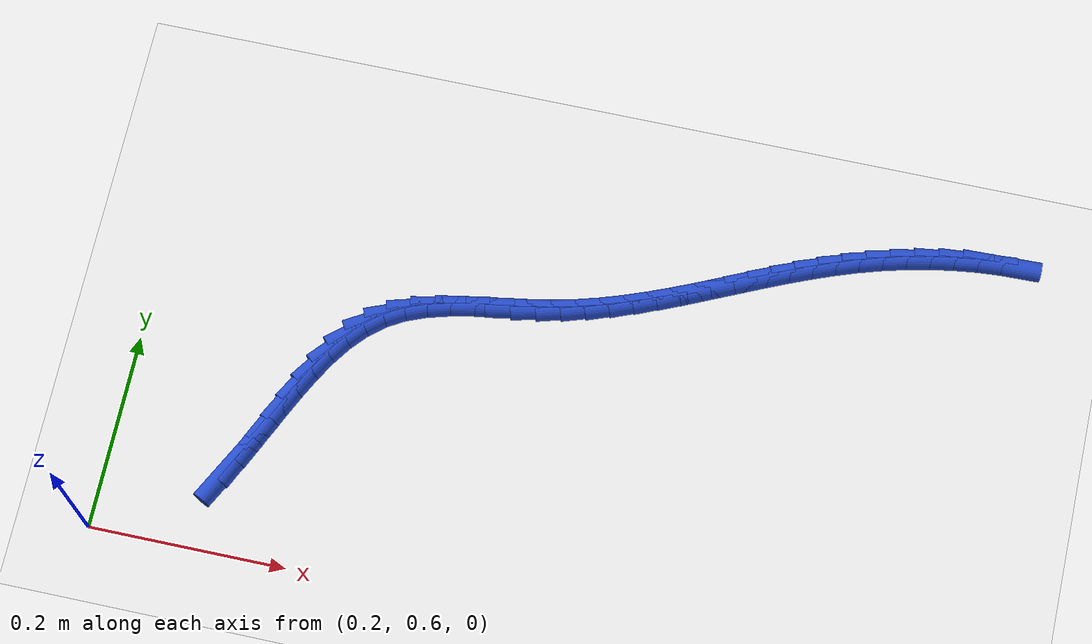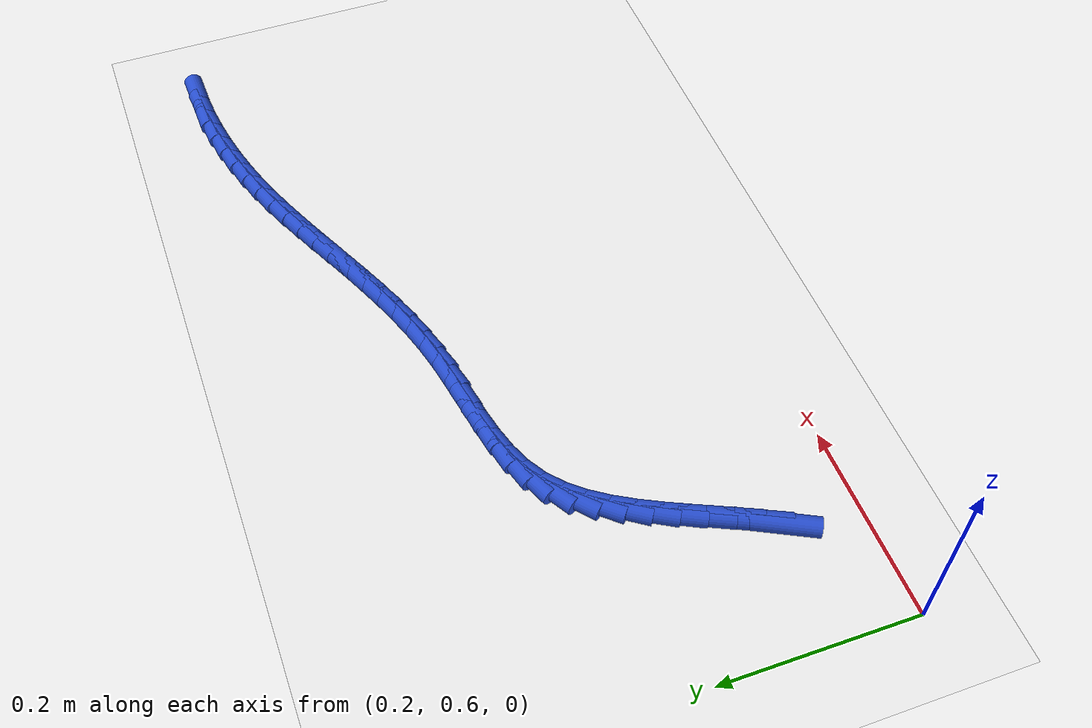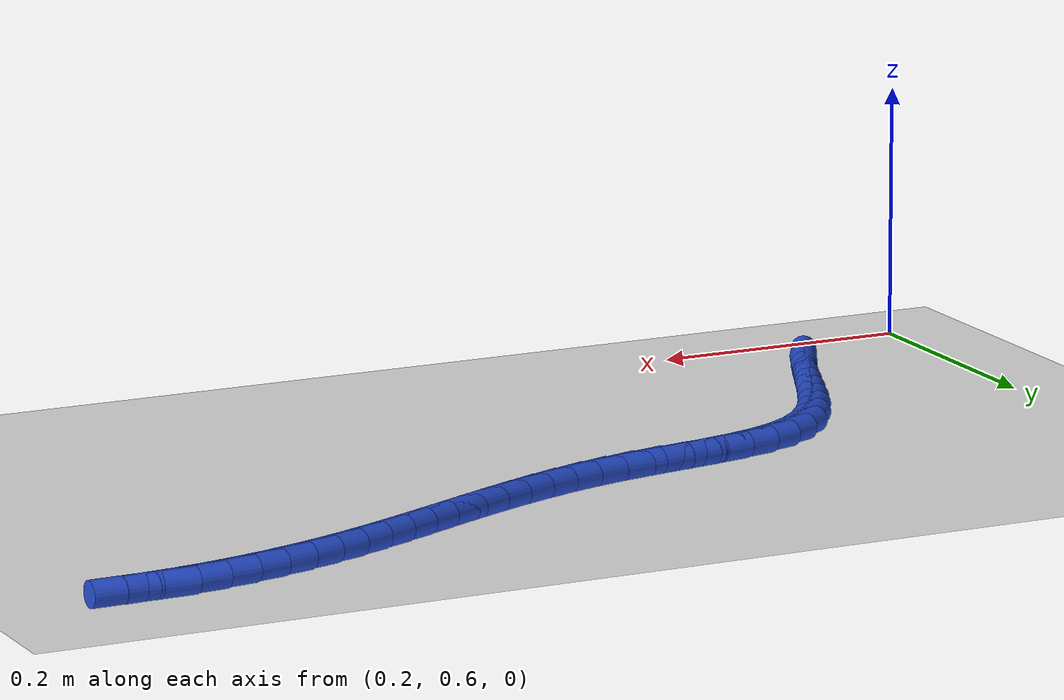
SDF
<sdf version="1.6">
 <world name="default">
  <model name="ground_plane">
   <static>1</static>
   <link name="link">
    <collision name="collision">
     <geometry><plane><normal>0 0 1</normal><size>100 100</size></plane></geometry>
     <surface><friction><ode><mu>100</mu><mu2>50</mu2></ode></friction></surface>
    </collision>
    <visual name="visual">
     <cast_shadows>0</cast_shadows>
     <geometry><plane><normal>0 0 1</normal><size>100 100</size></plane></geometry>
     <material>
      <script><uri>file://media/materials/scripts/gazebo.material</uri><name>Gazebo/WhiteGlow</name></script>
     </material>
    </visual>
   </link>
  </model>
  <model name="line">
   <link name="link_32">
    <pose>0.3214619400428342 0.6829497191318804 0.01 0 1.57 1.0975435108582867</pose>
    <collision name="collision">
     <geometry><cylinder><radius>0.01</radius><length>0.08</length></cylinder></geometry>
    </collision>
    <visual name="visual">
     <material>
      <script><name>Gazebo/Blue</name><uri>file://media/materials/scripts/gazebo.material</uri></script>
     </material>
     <geometry><cylinder><radius>0.01</radius><length>0.08</length></cylinder></geometry>
    </visual>
   </link>
   <link name="link_33">
    <pose>0.33305902299179746 0.7055974044341369 0.01 0 1.57 1.130329600358164</pose>
    <collision name="collision">
     <geometry><cylinder><radius>0.01</radius><length>0.08</length></cylinder></geometry>
    </collision>
    <visual name="visual">
     <material>
      <script><name>Gazebo/Blue</name><uri>file://media/materials/scripts/gazebo.material</uri></script>
     </material>
     <geometry><cylinder><radius>0.01</radius><length>0.08</length></cylinder></geometry>
    </visual>
   </link>
   <link name="link_34">
    <pose>0.34402848020659565 0.7288697882104459 0.01 0 1.57 1.1418536177287364</pose>
    <collision name="collision">
     <geometry><cylinder><radius>0.01</radius><length>0.08</length></cylinder></geometry>
    </collision>
    <visual name="visual">
     <material>
      <script><name>Gazebo/Blue</name><uri>file://media/materials/scripts/gazebo.material</uri></script>
     </material>
     <geometry><cylinder><radius>0.01</radius><length>0.08</length></cylinder></geometry>
    </visual>
   </link>
   <link name="link_35">
    <pose>0.35474117768465696 0.752293611536665 0.01 0 1.57 1.132539995785431</pose>
    <collision name="collision">
     <geometry><cylinder><radius>0.01</radius><length>0.08</length></cylinder></geometry>
    </collision>
    <visual name="visual">
     <material>
      <script><name>Gazebo/Blue</name><uri>file://media/materials/scripts/gazebo.material</uri></script>
     </material>
     <geometry><cylinder><radius>0.01</radius><length>0.08</length></cylinder></geometry>
    </visual>
   </link>
   <link name="link_36">
    <pose>0.3655679814234096 0.775395615488651 0.01 0 1.57 1.1014872174678245</pose>
    <collision name="collision">
     <geometry><cylinder><radius>0.01</radius><length>0.08</length></cylinder></geometry>
    </collision>
    <visual name="visual">
     <material>
      <script><name>Gazebo/Blue</name><uri>file://media/materials/scripts/gazebo.material</uri></script>
     </material>
     <geometry><cylinder><radius>0.01</radius><length>0.08</length></cylinder></geometry>
    </visual>
   </link>
   <link name="link_37">
    <pose>0.37687975742028146 0.797702541142261 0.01 0 1.57 1.0464499784861645</pose>
    <collision name="collision">
     <geometry><cylinder><radius>0.01</radius><length>0.08</length></cylinder></geometry>
    </collision>
    <visual name="visual">
     <material>
      <script><name>Gazebo/Blue</name><uri>file://media/materials/scripts/gazebo.material</uri></script>
     </material>
     <geometry><cylinder><radius>0.01</radius><length>0.08</length></cylinder></geometry>
    </visual>
   </link>
   <link name="link_38">
    <pose>0.3890473716727008 0.8187411295733524 0.01 0 1.57 0.9640314212186265</pose>
    <collision name="collision">
     <geometry><cylinder><radius>0.01</radius><length>0.08</length></cylinder></geometry>
    </collision>
    <visual name="visual">
     <material>
      <script><name>Gazebo/Blue</name><uri>file://media/materials/scripts/gazebo.material</uri></script>
     </material>
     <geometry><cylinder><radius>0.01</radius><length>0.08</length></cylinder></geometry>
    </visual>
   </link>
   <link name="link_39">
    <pose>0.4024416901780958 0.8380381218577823 0.01 0 1.57 0.8504756450179841</pose>
    <collision name="collision">
     <geometry><cylinder><radius>0.01</radius><length>0.08</length></cylinder></geometry>
    </collision>
    <visual name="visual">
     <material>
      <script><name>Gazebo/Blue</name><uri>file://media/materials/scripts/gazebo.material</uri></script>
     </material>
     <geometry><cylinder><radius>0.01</radius><length>0.08</length></cylinder></geometry>
    </visual>
   </link>
   <link name="link_40">
    <pose>0.4174335789338943 0.8551202590714075 0.01 0 1.57 0.7037318500427051</pose>
    <collision name="collision">
     <geometry><cylinder><radius>0.01</radius><length>0.08</length></cylinder></geometry>
    </collision>
    <visual name="visual">
     <material>
      <script><name>Gazebo/Blue</name><uri>file://media/materials/scripts/gazebo.material</uri></script>
     </material>
     <geometry><cylinder><radius>0.01</radius><length>0.08</length></cylinder></geometry>
    </visual>
   </link>
   <link name="link_41">
    <pose>0.4343939039375247 0.8695142822900852 0.01 0 1.57 0.5318612919687798</pose>
    <collision name="collision">
     <geometry><cylinder><radius>0.01</radius><length>0.08</length></cylinder></geometry>
    </collision>
    <visual name="visual">
     <material>
      <script><name>Gazebo/Blue</name><uri>file://media/materials/scripts/gazebo.material</uri></script>
     </material>
     <geometry><cylinder><radius>0.01</radius><length>0.08</length></cylinder></geometry>
    </visual>
   </link>
   <link name="link_42">
    <pose>0.4536304416415753 0.8808334461201939 0.01 0 1.57 0.38193620138623197</pose>
    <collision name="collision">
     <geometry><cylinder><radius>0.01</radius><length>0.08</length></cylinder></geometry>
    </collision>
    <visual name="visual">
     <material>
      <script><name>Gazebo/Blue</name><uri>file://media/materials/scripts/gazebo.material</uri></script>
     </material>
     <geometry><cylinder><radius>0.01</radius><length>0.08</length></cylinder></geometry>
    </visual>
   </link>
   <link name="link_43">
    <pose>0.47493946596729103 0.8893924191657804 0.01 0 1.57 0.2743661039947238</pose>
    <collision name="collision">
     <geometry><cylinder><radius>0.01</radius><length>0.08</length></cylinder></geometry>
    </collision>
    <visual name="visual">
     <material>
      <script><name>Gazebo/Blue</name><uri>file://media/materials/scripts/gazebo.material</uri></script>
     </material>
     <geometry><cylinder><radius>0.01</radius><length>0.08</length></cylinder></geometry>
    </visual>
   </link>
   <link name="link_44">
    <pose>0.4978690154981541 0.8958462705762523 0.01 0 1.57 0.2048364941718794</pose>
    <collision name="collision">
     <geometry><cylinder><radius>0.01</radius><length>0.08</length></cylinder></geometry>
    </collision>
    <visual name="visual">
     <material>
      <script><name>Gazebo/Blue</name><uri>file://media/materials/scripts/gazebo.material</uri></script>
     </material>
     <geometry><cylinder><radius>0.01</radius><length>0.08</length></cylinder></geometry>
    </visual>
   </link>
   <link name="link_45">
    <pose>0.5219654885043072 0.9008523188324783 0.01 0 1.57 0.16830782976975128</pose>
    <collision name="collision">
     <geometry><cylinder><radius>0.01</radius><length>0.08</length></cylinder></geometry>
    </collision>
    <visual name="visual">
     <material>
      <script><name>Gazebo/Blue</name><uri>file://media/materials/scripts/gazebo.material</uri></script>
     </material>
     <geometry><cylinder><radius>0.01</radius><length>0.08</length></cylinder></geometry>
    </visual>
   </link>
   <link name="link_46">
    <pose>0.5467752832558944 0.905067882415328 0.01 0 1.57 0.16142615520135203</pose>
    <collision name="collision">
     <geometry><cylinder><radius>0.01</radius><length>0.08</length></cylinder></geometry>
    </collision>
    <visual name="visual">
     <material>
      <script><name>Gazebo/Blue</name><uri>file://media/materials/scripts/gazebo.material</uri></script>
     </material>
     <geometry><cylinder><radius>0.01</radius><length>0.08</length></cylinder></geometry>
    </visual>
   </link>
   <link name="link_47">
    <pose>0.5718447980230582 0.9091502798056699 0.01 0 1.57 0.18310891142201577</pose>
    <collision name="collision">
     <geometry><cylinder><radius>0.01</radius><length>0.08</length></cylinder></geometry>
    </collision>
    <visual name="visual">
     <material>
      <script><name>Gazebo/Blue</name><uri>file://media/materials/scripts/gazebo.material</uri></script>
     </material>
     <geometry><cylinder><radius>0.01</radius><length>0.08</length></cylinder></geometry>
    </visual>
   </link>
   <link name="link_48">
    <pose>0.5967204310759422 0.9137568294843734 0.01 0 1.57 0.23057755355342752</pose>
    <collision name="collision">
     <geometry><cylinder><radius>0.01</radius><length>0.08</length></cylinder></geometry>
    </collision>
    <visual name="visual">
     <material>
      <script><name>Gazebo/Blue</name><uri>file://media/materials/scripts/gazebo.material</uri></script>
     </material>
     <geometry><cylinder><radius>0.01</radius><length>0.08</length></cylinder></geometry>
    </visual>
   </link>
   <link name="link_49">
    <pose>0.6210060169898253 0.9194579354174544 0.01 0 1.57 0.2811419478961749</pose>
    <collision name="collision">
     <geometry><cylinder><radius>0.01</radius><length>0.08</length></cylinder></geometry>
    </collision>
    <visual name="visual">
     <material>
      <script><name>Gazebo/Blue</name><uri>file://media/materials/scripts/gazebo.material</uri></script>
     </material>
     <geometry><cylinder><radius>0.01</radius><length>0.08</length></cylinder></geometry>
    </visual>
   </link>
   <link name="link_50">
    <pose>0.6446591116681746 0.9262887387687698 0.01 0 1.57 0.3251660689453909</pose>
    <collision name="collision">
     <geometry><cylinder><radius>0.01</radius><length>0.08</length></cylinder></geometry>
    </collision>
    <visual name="visual">
     <material>
      <script><name>Gazebo/Blue</name><uri>file://media/materials/scripts/gazebo.material</uri></script>
     </material>
     <geometry><cylinder><radius>0.01</radius><length>0.08</length></cylinder></geometry>
    </visual>
   </link>
   <link name="link_51">
    <pose>0.6677718137486038 0.9340807861910443 0.01 0 1.57 0.36206194708063233</pose>
    <collision name="collision">
     <geometry><cylinder><radius>0.01</radius><length>0.08</length></cylinder></geometry>
    </collision>
    <visual name="visual">
     <material>
      <script><name>Gazebo/Blue</name><uri>file://media/materials/scripts/gazebo.material</uri></script>
     </material>
     <geometry><cylinder><radius>0.01</radius><length>0.08</length></cylinder></geometry>
    </visual>
   </link>
   <link name="link_52">
    <pose>0.6904364834495412 0.9426652285042689 0.01 0 1.57 0.39144726476501857</pose>
    <collision name="collision">
     <geometry><cylinder><radius>0.01</radius><length>0.08</length></cylinder></geometry>
    </collision>
    <visual name="visual">
     <material>
      <script><name>Gazebo/Blue</name><uri>file://media/materials/scripts/gazebo.material</uri></script>
     </material>
     <geometry><cylinder><radius>0.01</radius><length>0.08</length></cylinder></geometry>
    </visual>
   </link>
   <link name="link_53">
    <pose>0.7127454809894156 0.951873216528436 0.01 0 1.57 0.41308402396247024</pose>
    <collision name="collision">
     <geometry><cylinder><radius>0.01</radius><length>0.08</length></cylinder></geometry>
    </collision>
    <visual name="visual">
     <material>
      <script><name>Gazebo/Blue</name><uri>file://media/materials/scripts/gazebo.material</uri></script>
     </material>
     <geometry><cylinder><radius>0.01</radius><length>0.08</length></cylinder></geometry>
    </visual>
   </link>
   <link name="link_54">
    <pose>0.7347911665866551 0.9615359010835374 0.01 0 1.57 0.42683475521353026</pose>
    <collision name="collision">
     <geometry><cylinder><radius>0.01</radius><length>0.08</length></cylinder></geometry>
    </collision>
    <visual name="visual">
     <material>
      <script><name>Gazebo/Blue</name><uri>file://media/materials/scripts/gazebo.material</uri></script>
     </material>
     <geometry><cylinder><radius>0.01</radius><length>0.08</length></cylinder></geometry>
    </visual>
   </link>
   <link name="link_55">
    <pose>0.7566659004596887 0.9714844329895649 0.01 0 1.57 0.43262606885576316</pose>
    <collision name="collision">
     <geometry><cylinder><radius>0.01</radius><length>0.08</length></cylinder></geometry>
    </collision>
    <visual name="visual">
     <material>
      <script><name>Gazebo/Blue</name><uri>file://media/materials/scripts/gazebo.material</uri></script>
     </material>
     <geometry><cylinder><radius>0.01</radius><length>0.08</length></cylinder></geometry>
    </visual>
   </link>
   <link name="link_56">
    <pose>0.7784620428269444 0.9815499630665101 0.01 0 1.57 0.4304240268984643</pose>
    <collision name="collision">
     <geometry><cylinder><radius>0.01</radius><length>0.08</length></cylinder></geometry>
    </collision>
    <visual name="visual">
     <material>
      <script><name>Gazebo/Blue</name><uri>file://media/materials/scripts/gazebo.material</uri></script>
     </material>
     <geometry><cylinder><radius>0.01</radius><length>0.08</length></cylinder></geometry>
    </visual>
   </link>
   <link name="link_57">
    <pose>0.8002719539068512 0.9915636421343657 0.01 0 1.57 0.42022355418391083</pose>
    <collision name="collision">
     <geometry><cylinder><radius>0.01</radius><length>0.08</length></cylinder></geometry>
    </collision>
    <visual name="visual">
     <material>
      <script><name>Gazebo/Blue</name><uri>file://media/materials/scripts/gazebo.material</uri></script>
     </material>
     <geometry><cylinder><radius>0.01</radius><length>0.08</length></cylinder></geometry>
    </visual>
   </link>
   <link name="link_58">
    <pose>0.8221879939178369 1.0013566210131222 0.01 0 1.57 0.40205273999950547</pose>
    <collision name="collision">
     <geometry><cylinder><radius>0.01</radius><length>0.08</length></cylinder></geometry>
    </collision>
    <visual name="visual">
     <material>
      <script><name>Gazebo/Blue</name><uri>file://media/materials/scripts/gazebo.material</uri></script>
     </material>
     <geometry><cylinder><radius>0.01</radius><length>0.08</length></cylinder></geometry>
    </visual>
   </link>
   <link name="link_59">
    <pose>0.8443025230783303 1.0107600505227723 0.01 0 1.57 0.3759919458420763</pose>
    <collision name="collision">
     <geometry><cylinder><radius>0.01</radius><length>0.08</length></cylinder></geometry>
    </collision>
    <visual name="visual">
     <material>
      <script><name>Gazebo/Blue</name><uri>file://media/materials/scripts/gazebo.material</uri></script>
     </material>
     <geometry><cylinder><radius>0.01</radius><length>0.08</length></cylinder></geometry>
    </visual>
   </link>
   <link name="link_60">
    <pose>0.86670790160676 1.019605081483308 0.01 0 1.57 0.3422551058739761</pose>
    <collision name="collision">
     <geometry><cylinder><radius>0.01</radius><length>0.08</length></cylinder></geometry>
    </collision>
    <visual name="visual">
     <material>
      <script><name>Gazebo/Blue</name><uri>file://media/materials/scripts/gazebo.material</uri></script>
     </material>
     <geometry><cylinder><radius>0.01</radius><length>0.08</length></cylinder></geometry>
    </visual>
   </link>
   <link name="link_61">
    <pose>0.8894951881271966 1.0277236492138477 0.01 0 1.57 0.3034129283103802</pose>
    <collision name="collision">
     <geometry><cylinder><radius>0.01</radius><length>0.08</length></cylinder></geometry>
    </collision>
    <visual name="visual">
     <material>
      <script><name>Gazebo/Blue</name><uri>file://media/materials/scripts/gazebo.material</uri></script>
     </material>
     <geometry><cylinder><radius>0.01</radius><length>0.08</length></cylinder></geometry>
    </visual>
   </link>
   <link name="link_62">
    <pose>0.9126918097679279 1.0349860411150384 0.01 0 1.57 0.2627217710958454</pose>
    <collision name="collision">
     <geometry><cylinder><radius>0.01</radius><length>0.08</length></cylinder></geometry>
    </collision>
    <visual name="visual">
     <material>
      <script><name>Gazebo/Blue</name><uri>file://media/materials/scripts/gazebo.material</uri></script>
     </material>
     <geometry><cylinder><radius>0.01</radius><length>0.08</length></cylinder></geometry>
    </visual>
   </link>
   <link name="link_63">
    <pose>0.9362340886363153 1.0413174555580602 0.01 0 1.57 0.22015469262808218</pose>
    <collision name="collision">
     <geometry><cylinder><radius>0.01</radius><length>0.08</length></cylinder></geometry>
    </collision>
    <visual name="visual">
     <material>
      <script><name>Gazebo/Blue</name><uri>file://media/materials/scripts/gazebo.material</uri></script>
     </material>
     <geometry><cylinder><radius>0.01</radius><length>0.08</length></cylinder></geometry>
    </visual>
   </link>
   <link name="link_64">
    <pose>0.9600513276982324 1.0466473215027872 0.01 0 1.57 0.17542535260177597</pose>
    <collision name="collision">
     <geometry><cylinder><radius>0.01</radius><length>0.08</length></cylinder></geometry>
    </collision>
    <visual name="visual">
     <material>
      <script><name>Gazebo/Blue</name><uri>file://media/materials/scripts/gazebo.material</uri></script>
     </material>
     <geometry><cylinder><radius>0.01</radius><length>0.08</length></cylinder></geometry>
    </visual>
   </link>
   <link name="link_65">
    <pose>0.9840728299195529 1.0509050679090928 0.01 0 1.57 0.1282528940160982</pose>
    <collision name="collision">
     <geometry><cylinder><radius>0.01</radius><length>0.08</length></cylinder></geometry>
    </collision>
    <visual name="visual">
     <material>
      <script><name>Gazebo/Blue</name><uri>file://media/materials/scripts/gazebo.material</uri></script>
     </material>
     <geometry><cylinder><radius>0.01</radius><length>0.08</length></cylinder></geometry>
    </visual>
   </link>
   <link name="link_66">
    <pose>1.008227898266151 1.0540201237368514 0.01 0 1.57 0.07836750552753674</pose>
    <collision name="collision">
     <geometry><cylinder><radius>0.01</radius><length>0.08</length></cylinder></geometry>
    </collision>
    <visual name="visual">
     <material>
      <script><name>Gazebo/Blue</name><uri>file://media/materials/scripts/gazebo.material</uri></script>
     </material>
     <geometry><cylinder><radius>0.01</radius><length>0.08</length></cylinder></geometry>
    </visual>
   </link>
   <link name="link_67">
    <pose>1.0324458357038997 1.0559219179459365 0.01 0 1.57 0.025519397075747997</pose>
    <collision name="collision">
     <geometry><cylinder><radius>0.01</radius><length>0.08</length></cylinder></geometry>
    </collision>
    <visual name="visual">
     <material>
      <script><name>Gazebo/Blue</name><uri>file://media/materials/scripts/gazebo.material</uri></script>
     </material>
     <geometry><cylinder><radius>0.01</radius><length>0.08</length></cylinder></geometry>
    </visual>
   </link>
  </model>
 </world>
</sdf>
